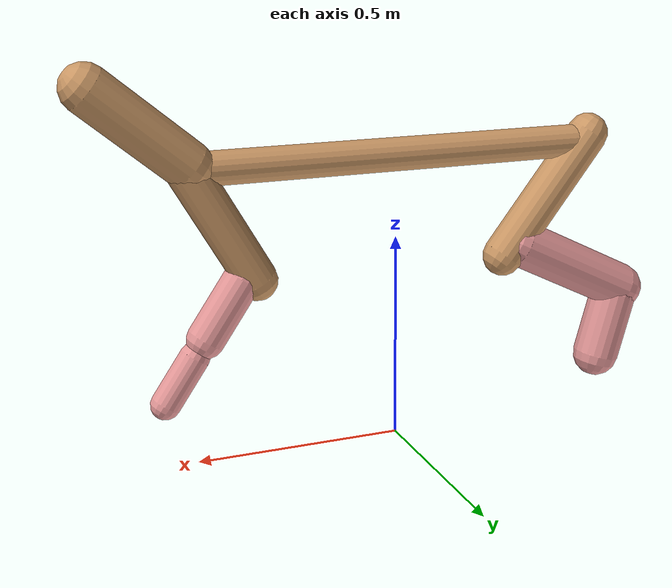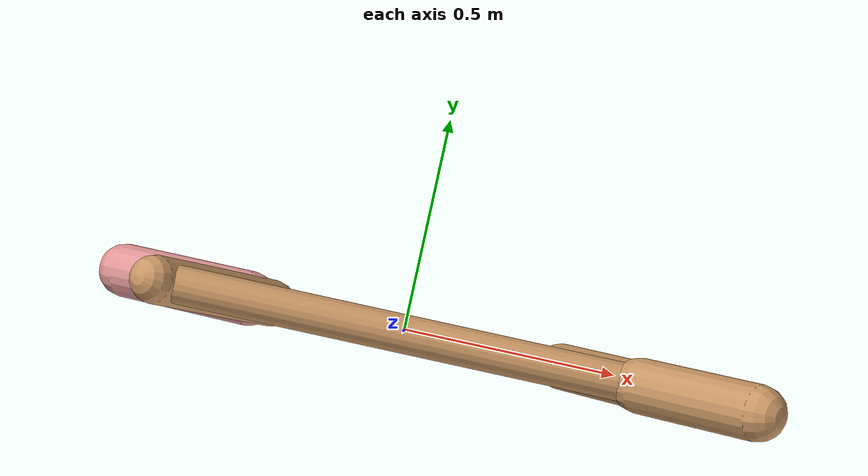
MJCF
<?xml version="1.0" encoding="utf-8"?>
<mujoco model="cheetah">
	<compiler angle="radian" coordinate="local" inertiafromgeom="true" settotalmass="14"></compiler>
	<default>
		<joint armature=".1" damping="0.00862640061894805" limited="true" solimplimit="0 .8 .03" solreflimit=".02 1" stiffness="9.052079710883305"></joint>
		<geom conaffinity="0" condim="3" contype="1" friction="0.750449138694723 0.08888833884033162 0.11192343429336193" rgba="0.8 0.6 .4 1" solimp="0.0 0.8 0.01" solref="0.02 1"></geom>
		<motor ctrllimited="true" ctrlrange="-1 1"></motor>
	</default>
	<size nstack="300000" nuser_geom="1"></size>
	<option gravity="0 0 -9.81" timestep="0.01"></option>
	<worldbody>
		<body name="torso" pos="0 0 .7">
			<joint armature="0" axis="1 0 0" damping="0.0" limited="false" name="ignorex" pos="0 0 0" stiffness="0.0" type="slide"></joint>
			<joint armature="0" axis="0 0 1" damping="0.0" limited="false" name="ignorez" pos="0 0 0" stiffness="0.0" type="slide"></joint>
			<joint armature="0" axis="0 1 0" damping="0.0" limited="false" name="ignorey" pos="0 0 0" stiffness="0.0" type="hinge"></joint>
			<geom fromto="-.5 0 0 .5 0 0" name="torso" size="0.039853245512520355" type="capsule"></geom>
			<geom axisangle="0 1 0 .87" name="head" pos=".6 0 .1" size="0.05677358653426797 0.1423291256333585" type="capsule"></geom>
			<body name="bthigh" pos="-.5 0 0">
				<joint axis="0 1 0" damping="7.57899885579825" name="bthigh" pos="0 0 0" range="-.52 1.05" stiffness="286.52791824102445" type="hinge"></joint>
				<geom axisangle="0 1 0 -3.8" name="bthigh" pos=".1 0 -.13" size="0.05024746569675727 0.18404463370090776" type="capsule"></geom>
				<body name="bshin" pos=".16 0 -.25">
					<joint axis="0 1 0" damping="5.0014359401940975" name="bshin" pos="0 0 0" range="-.785 .785" stiffness="150.54682812199562" type="hinge"></joint>
					<geom axisangle="0 1 0 -2.03" name="bshin" pos="-.14 0 -.07" rgba="0.9 0.6 0.6 1" size="0.05859959230969302 0.16254362063815347" type="capsule"></geom>
					<body name="bfoot" pos="-.28 0 -.14">
						<joint axis="0 1 0" damping="2.8595678685364154" name="bfoot" pos="0 0 0" range="-.4 .785" stiffness="113.96784394045588" type="hinge"></joint>
						<geom axisangle="0 1 0 -.27" name="bfoot" pos=".03 0 -.097" rgba="0.9 0.6 0.6 1" size="0.05801910933022502 0.08513429948249344" type="capsule"></geom>
						<inertial mass="10"></inertial>
					</body>
				</body>
			</body>
			<body name="fthigh" pos=".5 0 0">
				<joint axis="0 1 0" damping="3.5869369555696613" name="fthigh" pos="0 0 0" range="-1.5 0.8" stiffness="224.6769578151381" type="hinge"></joint>
				<geom axisangle="0 1 0 .52" name="fthigh" pos="-.07 0 -.12" size="0.049154090195480234 0.17119441960776" type="capsule"></geom>
				<body name="fshin" pos="-.14 0 -.24">
					<joint axis="0 1 0" damping="2.4253819958715845" name="fshin" pos="0 0 0" range="-1.2 1.1" stiffness="105.97375038170765" type="hinge"></joint>
					<geom axisangle="0 1 0 -.6" name="fshin" pos=".065 0 -.09" rgba="0.9 0.6 0.6 1" size="0.045238113926023386 0.08263804930828533" type="capsule"></geom>
					<body name="ffoot" pos=".13 0 -.18">
						<joint axis="0 1 0" damping="1.5027507961600115" name="ffoot" pos="0 0 0" range="-3.1 -0.3" stiffness="70.79618509144419" type="hinge"></joint>
						<geom axisangle="0 1 0 -.6" name="ffoot" pos=".045 0 -.07" rgba="0.9 0.6 0.6 1" size="0.03575434082484845 0.06503275179028484" type="capsule"></geom>
						<inertial mass="10"></inertial>
					</body>
				</body>
			</body>
		</body>
	</worldbody>
	<actuator>
		<motor gear="120" joint="bthigh" name="bthigh"></motor>
		<motor gear="90" joint="bshin" name="bshin"></motor>
		<motor gear="60" joint="bfoot" name="bfoot"></motor>
		<motor gear="120" joint="fthigh" name="fthigh"></motor>
		<motor gear="60" joint="fshin" name="fshin"></motor>
		<motor gear="30" joint="ffoot" name="ffoot"></motor>
	</actuator>
</mujoco>
